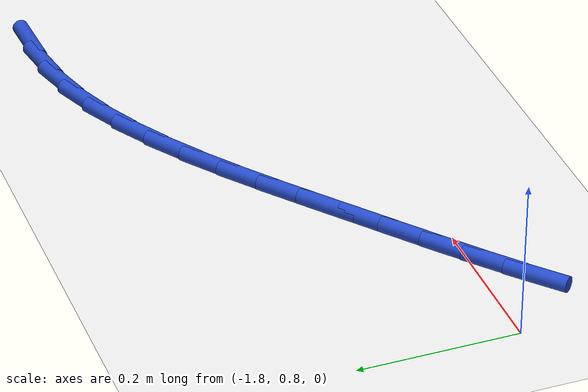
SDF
<sdf version="1.6">
 <world name="default">
  <model name="ground_plane">
   <static>1</static>
   <link name="link">
    <collision name="collision">
     <geometry><plane><normal>0 0 1</normal><size>100 100</size></plane></geometry>
     <surface><friction><ode><mu>100</mu><mu2>50</mu2></ode></friction></surface>
    </collision>
    <visual name="visual">
     <cast_shadows>0</cast_shadows>
     <geometry><plane><normal>0 0 1</normal><size>100 100</size></plane></geometry>
     <material>
      <script><uri>file://media/materials/scripts/gazebo.material</uri><name>Gazebo/WhiteGlow</name></script>
     </material>
    </visual>
   </link>
  </model>
  <model name="line">
   <link name="link_30">
    <pose>-1.0180761172461081 1.145427051678923 0.01 0 1.57 0.039239183638287975</pose>
    <collision name="collision">
     <geometry><cylinder><radius>0.01</radius><length>0.08</length></cylinder></geometry>
    </collision>
    <visual name="visual">
     <material>
      <script><name>Gazebo/Blue</name><uri>file://media/materials/scripts/gazebo.material</uri></script>
     </material>
     <geometry><cylinder><radius>0.01</radius><length>0.08</length></cylinder></geometry>
    </visual>
   </link>
   <link name="link_31">
    <pose>-1.0707609885390457 1.1433586786630088 0.01 0 1.57 0.15130301736059648</pose>
    <collision name="collision">
     <geometry><cylinder><radius>0.01</radius><length>0.08</length></cylinder></geometry>
    </collision>
    <visual name="visual">
     <material>
      <script><name>Gazebo/Blue</name><uri>file://media/materials/scripts/gazebo.material</uri></script>
     </material>
     <geometry><cylinder><radius>0.01</radius><length>0.08</length></cylinder></geometry>
    </visual>
   </link>
   <link name="link_32">
    <pose>-1.12240391603627 1.1354847712616454 0.01 0 1.57 0.26778322440923746</pose>
    <collision name="collision">
     <geometry><cylinder><radius>0.01</radius><length>0.08</length></cylinder></geometry>
    </collision>
    <visual name="visual">
     <material>
      <script><name>Gazebo/Blue</name><uri>file://media/materials/scripts/gazebo.material</uri></script>
     </material>
     <geometry><cylinder><radius>0.01</radius><length>0.08</length></cylinder></geometry>
    </visual>
   </link>
   <link name="link_33">
    <pose>-1.1727966360133144 1.1216583682135401 0.01 0 1.57 0.3712360974898347</pose>
    <collision name="collision">
     <geometry><cylinder><radius>0.01</radius><length>0.08</length></cylinder></geometry>
    </collision>
    <visual name="visual">
     <material>
      <script><name>Gazebo/Blue</name><uri>file://media/materials/scripts/gazebo.material</uri></script>
     </material>
     <geometry><cylinder><radius>0.01</radius><length>0.08</length></cylinder></geometry>
    </visual>
   </link>
   <link name="link_34">
    <pose>-1.2220102491160032 1.102500202652439 0.01 0 1.57 0.45786549823126277</pose>
    <collision name="collision">
     <geometry><cylinder><radius>0.01</radius><length>0.08</length></cylinder></geometry>
    </collision>
    <visual name="visual">
     <material>
      <script><name>Gazebo/Blue</name><uri>file://media/materials/scripts/gazebo.material</uri></script>
     </material>
     <geometry><cylinder><radius>0.01</radius><length>0.08</length></cylinder></geometry>
    </visual>
   </link>
   <link name="link_35">
    <pose>-1.2701661778688085 1.078769292433742 0.01 0 1.57 0.528071783017001</pose>
    <collision name="collision">
     <geometry><cylinder><radius>0.01</radius><length>0.08</length></cylinder></geometry>
    </collision>
    <visual name="visual">
     <material>
      <script><name>Gazebo/Blue</name><uri>file://media/materials/scripts/gazebo.material</uri></script>
     </material>
     <geometry><cylinder><radius>0.01</radius><length>0.08</length></cylinder></geometry>
    </visual>
   </link>
   <link name="link_36">
    <pose>-1.317385844796202 1.051224655412849 0.01 0 1.57 0.5829549874949458</pose>
    <collision name="collision">
     <geometry><cylinder><radius>0.01</radius><length>0.08</length></cylinder></geometry>
    </collision>
    <visual name="visual">
     <material>
      <script><name>Gazebo/Blue</name><uri>file://media/materials/scripts/gazebo.material</uri></script>
     </material>
     <geometry><cylinder><radius>0.01</radius><length>0.08</length></cylinder></geometry>
    </visual>
   </link>
   <link name="link_37">
    <pose>-1.3637906724226552 1.02062530944516 0.01 0 1.57 0.6237755056718486</pose>
    <collision name="collision">
     <geometry><cylinder><radius>0.01</radius><length>0.08</length></cylinder></geometry>
    </collision>
    <visual name="visual">
     <material>
      <script><name>Gazebo/Blue</name><uri>file://media/materials/scripts/gazebo.material</uri></script>
     </material>
     <geometry><cylinder><radius>0.01</radius><length>0.08</length></cylinder></geometry>
    </visual>
   </link>
   <link name="link_38">
    <pose>-1.4095020832726401 0.9877302723860748 0.01 0 1.57 0.651633987907634</pose>
    <collision name="collision">
     <geometry><cylinder><radius>0.01</radius><length>0.08</length></cylinder></geometry>
    </collision>
    <visual name="visual">
     <material>
      <script><name>Gazebo/Blue</name><uri>file://media/materials/scripts/gazebo.material</uri></script>
     </material>
     <geometry><cylinder><radius>0.01</radius><length>0.08</length></cylinder></geometry>
    </visual>
   </link>
   <link name="link_39">
    <pose>-1.4546414998706292 0.9532985620909932 0.01 0 1.57 0.6673057587152976</pose>
    <collision name="collision">
     <geometry><cylinder><radius>0.01</radius><length>0.08</length></cylinder></geometry>
    </collision>
    <visual name="visual">
     <material>
      <script><name>Gazebo/Blue</name><uri>file://media/materials/scripts/gazebo.material</uri></script>
     </material>
     <geometry><cylinder><radius>0.01</radius><length>0.08</length></cylinder></geometry>
    </visual>
   </link>
   <link name="link_40">
    <pose>-1.499330344741093 0.9180891964153155 0.01 0 1.57 0.6712536311898221</pose>
    <collision name="collision">
     <geometry><cylinder><radius>0.01</radius><length>0.08</length></cylinder></geometry>
    </collision>
    <visual name="visual">
     <material>
      <script><name>Gazebo/Blue</name><uri>file://media/materials/scripts/gazebo.material</uri></script>
     </material>
     <geometry><cylinder><radius>0.01</radius><length>0.08</length></cylinder></geometry>
    </visual>
   </link>
   <link name="link_41">
    <pose>-1.5436882136397345 0.8828558876128303 0.01 0 1.57 0.6700992228183055</pose>
    <collision name="collision">
     <geometry><cylinder><radius>0.01</radius><length>0.08</length></cylinder></geometry>
    </collision>
    <visual name="visual">
     <material>
      <script><name>Gazebo/Blue</name><uri>file://media/materials/scripts/gazebo.material</uri></script>
     </material>
     <geometry><cylinder><radius>0.01</radius><length>0.08</length></cylinder></geometry>
    </visual>
   </link>
   <link name="link_42">
    <pose>-1.5877051759224896 0.8479761561134358 0.01 0 1.57 0.6748152665022326</pose>
    <collision name="collision">
     <geometry><cylinder><radius>0.01</radius><length>0.08</length></cylinder></geometry>
    </collision>
    <visual name="visual">
     <material>
      <script><name>Gazebo/Blue</name><uri>file://media/materials/scripts/gazebo.material</uri></script>
     </material>
     <geometry><cylinder><radius>0.01</radius><length>0.08</length></cylinder></geometry>
    </visual>
   </link>
   <link name="link_43">
    <pose>-1.6311581569046691 0.8132084744499256 0.01 0 1.57 0.6866083433297968</pose>
    <collision name="collision">
     <geometry><cylinder><radius>0.01</radius><length>0.08</length></cylinder></geometry>
    </collision>
    <visual name="visual">
     <material>
      <script><name>Gazebo/Blue</name><uri>file://media/materials/scripts/gazebo.material</uri></script>
     </material>
     <geometry><cylinder><radius>0.01</radius><length>0.08</length></cylinder></geometry>
    </visual>
   </link>
   <link name="link_44">
    <pose>-1.6738042197826113 0.7782536283300465 0.01 0 1.57 0.705671512432126</pose>
    <collision name="collision">
     <geometry><cylinder><radius>0.01</radius><length>0.08</length></cylinder></geometry>
    </collision>
    <visual name="visual">
     <material>
      <script><name>Gazebo/Blue</name><uri>file://media/materials/scripts/gazebo.material</uri></script>
     </material>
     <geometry><cylinder><radius>0.01</radius><length>0.08</length></cylinder></geometry>
    </visual>
   </link>
   <link name="link_45">
    <pose>-1.7154004277526547 0.7428124034615433 0.01 0 1.57 0.7321806446481335</pose>
    <collision name="collision">
     <geometry><cylinder><radius>0.01</radius><length>0.08</length></cylinder></geometry>
    </collision>
    <visual name="visual">
     <material>
      <script><name>Gazebo/Blue</name><uri>file://media/materials/scripts/gazebo.material</uri></script>
     </material>
     <geometry><cylinder><radius>0.01</radius><length>0.08</length></cylinder></geometry>
    </visual>
   </link>
  </model>
 </world>
</sdf>
